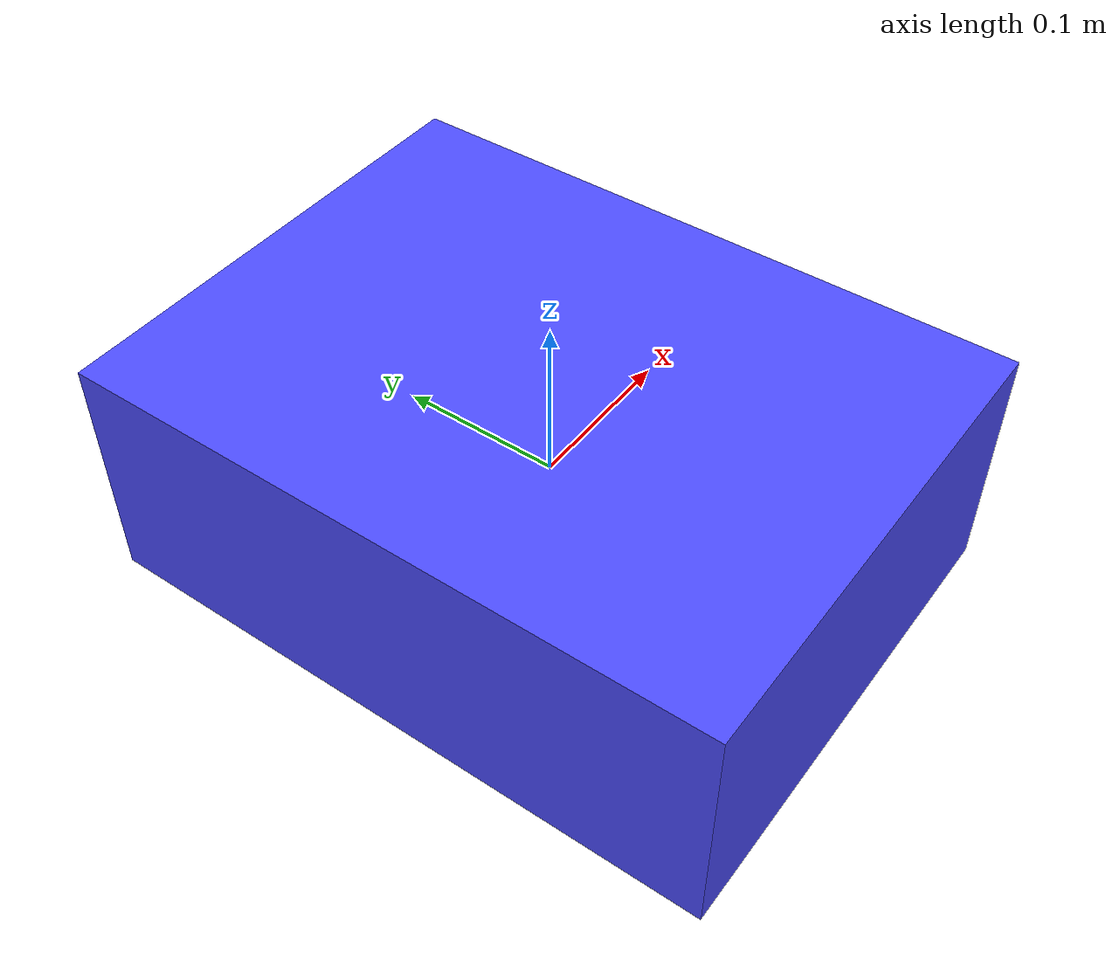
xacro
<?xml version="1.0"?>
<robot xmlns:xacro="http://www.ros.org/wiki/xacro" name="transportable_object">
  <link name="object_link">
    <visual>
      <geometry>
        <box size="0.3 0.4 0.15"/>  <!-- Small box that can be pushed by turtlebots -->
      </geometry>
      <material name="object_blue">
        <color rgba="0.3 0.3 1.0 1"/>
      </material>
    </visual>
    <collision>
      <geometry>
        <box size="0.3 0.4 0.15"/>
      </geometry>
    </collision>
    <inertial>
      <!-- Light enough for turtlebots to push -->
      <mass value="0.5"/>
      <!-- Inertia for a box with mass 0.5 and dimensions 0.3 x 0.4 x 0.15 -->
      <inertia
        ixx="0.00354" ixy="0.0" ixz="0.0"
        iyy="0.00229" iyz="0.0"
        izz="0.00521"/>
    </inertial>
  </link>

  <!-- Add physics properties -->
  <gazebo reference="object_link">
    <material>Gazebo/Blue</material>
    <mu1>0.1</mu1>  <!-- Low friction coefficient -->
    <mu2>0.1</mu2>
    <kp>1000.0</kp>  <!-- Contact stiffness -->
    <kd>100.0</kd>   <!-- Contact damping -->
    <maxContacts>20</maxContacts>
    <minDepth>0.001</minDepth>
  </gazebo>
</robot>
